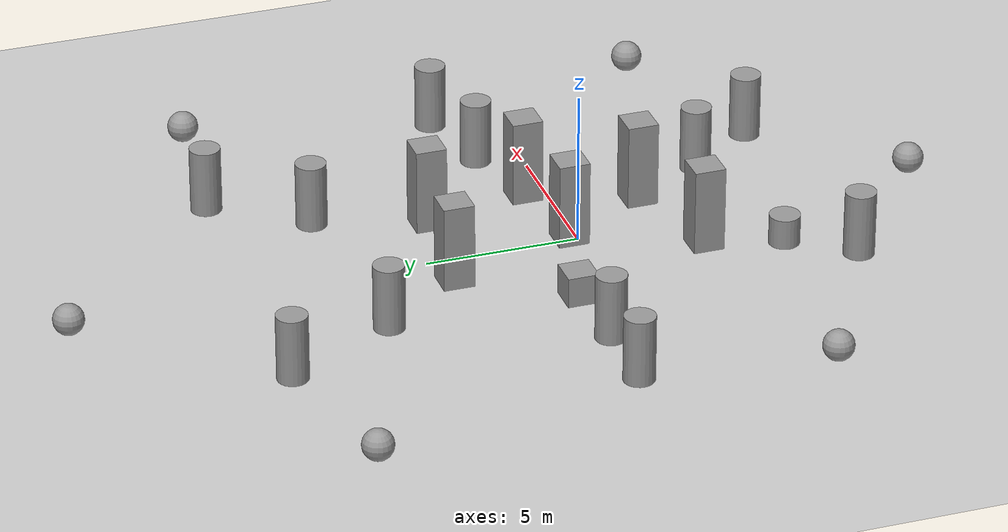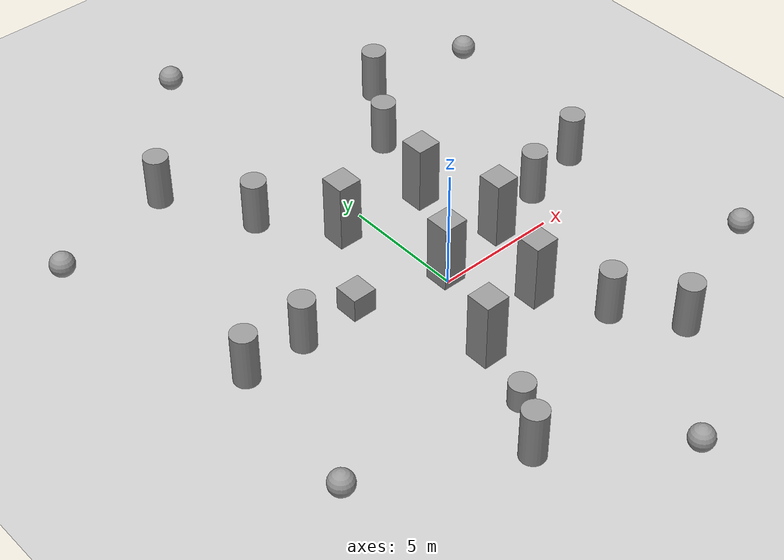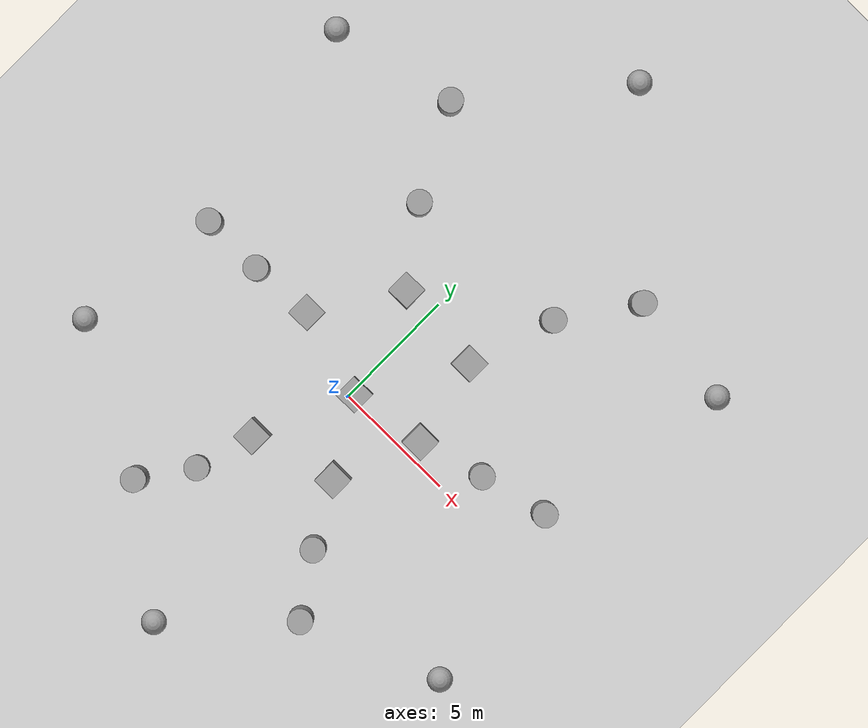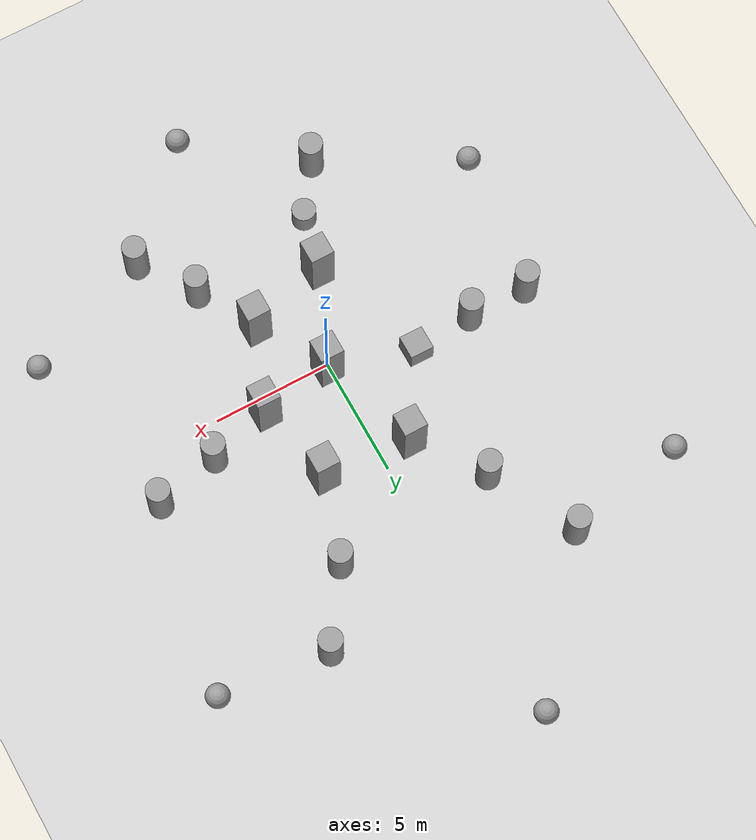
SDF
<sdf version="1.4">
  <world name="default">
    <include>
      <uri>model://ground_plane</uri>
    </include>
    <include>
      <uri>model://sun</uri>
    </include>

    <model name='unit_box'>
      <pose>-3.41504 1.18544 0.5 0 -0 0</pose>
      <link name='link'>
        <inertial>
          <mass>1</mass>
          <inertia>
            <ixx>0.166667</ixx>
            <ixy>0</ixy>
            <ixz>0</ixz>
            <iyy>0.166667</iyy>
            <iyz>0</iyz>
            <izz>0.166667</izz>
          </inertia>
          <pose>0 0 0 0 -0 0</pose>
        </inertial>
        <collision name='collision'>
          <geometry>
            <box>
              <size>1 1 1</size>
            </box>
          </geometry>
          <max_contacts>10</max_contacts>
          <surface>
            <contact>
              <ode/>
            </contact>
            <bounce/>
            <friction>
              <torsional>
                <ode/>
              </torsional>
              <ode/>
            </friction>
          </surface>
        </collision>
        <visual name='visual'>
          <geometry>
            <box>
              <size>1 1 1</size>
            </box>
          </geometry>
          <material>
            <script>
              <name>Gazebo/Grey</name>
              <uri>file://media/materials/scripts/gazebo.material</uri>
            </script>
          </material>
        </visual>
        <self_collide>0</self_collide>
        <enable_wind>0</enable_wind>
        <kinematic>0</kinematic>
      </link>
    </model>

    <model name='unit_box_clone_0'>
      <pose>-1.53892 -3.63462 1.4232 -2e-06 -0 -5.7e-05</pose>
      <link name='link'>
        <inertial>
          <mass>1</mass>
          <inertia>
            <ixx>0.166667</ixx>
            <ixy>0</ixy>
            <ixz>0</ixz>
            <iyy>0.166667</iyy>
            <iyz>0</iyz>
            <izz>0.166667</izz>
          </inertia>
          <pose>0 0 0 0 -0 0</pose>
        </inertial>
        <collision name='collision'>
          <geometry>
            <box>
              <size>1 1 2.8464</size>
            </box>
          </geometry>
          <max_contacts>10</max_contacts>
          <surface>
            <contact>
              <ode/>
            </contact>
            <bounce/>
            <friction>
              <torsional>
                <ode/>
              </torsional>
              <ode/>
            </friction>
          </surface>
        </collision>
        <visual name='visual'>
          <geometry>
            <box>
              <size>1 1 2.8464</size>
            </box>
          </geometry>
          <material>
            <script>
              <name>Gazebo/Grey</name>
              <uri>file://media/materials/scripts/gazebo.material</uri>
            </script>
          </material>
        </visual>
        <self_collide>0</self_collide>
        <enable_wind>0</enable_wind>
        <kinematic>0</kinematic>
      </link>
    </model>
    <model name='unit_box_clone_1'>
      <pose>-1.2548 4.48677 1.4232 -2e-06 -0 -5.7e-05</pose>
      <link name='link'>
        <inertial>
          <mass>1</mass>
          <inertia>
            <ixx>0.166667</ixx>
            <ixy>0</ixy>
            <ixz>0</ixz>
            <iyy>0.166667</iyy>
            <iyz>0</iyz>
            <izz>0.166667</izz>
          </inertia>
          <pose>0 0 0 0 -0 0</pose>
        </inertial>
        <collision name='collision'>
          <geometry>
            <box>
              <size>1 1 2.8464</size>
            </box>
          </geometry>
          <max_contacts>10</max_contacts>
          <surface>
            <contact>
              <ode/>
            </contact>
            <bounce/>
            <friction>
              <torsional>
                <ode/>
              </torsional>
              <ode/>
            </friction>
          </surface>
        </collision>
        <visual name='visual'>
          <geometry>
            <box>
              <size>1 1 2.8464</size>
            </box>
          </geometry>
          <material>
            <script>
              <name>Gazebo/Grey</name>
              <uri>file://media/materials/scripts/gazebo.material</uri>
            </script>
          </material>
        </visual>
        <self_collide>0</self_collide>
        <enable_wind>0</enable_wind>
        <kinematic>0</kinematic>
      </link>
    </model>
    <model name='unit_box_clone_2'>
      <pose>2.43031 4.19203 1.4232 -2e-06 -0 -5.7e-05</pose>
      <link name='link'>
        <inertial>
          <mass>1</mass>
          <inertia>
            <ixx>0.166667</ixx>
            <ixy>0</ixy>
            <ixz>0</ixz>
            <iyy>0.166667</iyy>
            <iyz>0</iyz>
            <izz>0.166667</izz>
          </inertia>
          <pose>0 0 0 0 -0 0</pose>
        </inertial>
        <collision name='collision'>
          <geometry>
            <box>
              <size>1 1 2.8464</size>
            </box>
          </geometry>
          <max_contacts>10</max_contacts>
          <surface>
            <contact>
              <ode/>
            </contact>
            <bounce/>
            <friction>
              <torsional>
                <ode/>
              </torsional>
              <ode/>
            </friction>
          </surface>
        </collision>
        <visual name='visual'>
          <geometry>
            <box>
              <size>1 1 2.8464</size>
            </box>
          </geometry>
          <material>
            <script>
              <name>Gazebo/Grey</name>
              <uri>file://media/materials/scripts/gazebo.material</uri>
            </script>
          </material>
        </visual>
        <self_collide>0</self_collide>
        <enable_wind>0</enable_wind>
        <kinematic>0</kinematic>
      </link>
    </model>
    <model name='unit_box_clone_3'>
      <pose>3.19683 0.742139 1.4232 -2e-06 -0 -5.7e-05</pose>
      <link name='link'>
        <inertial>
          <mass>1</mass>
          <inertia>
            <ixx>0.166667</ixx>
            <ixy>0</ixy>
            <ixz>0</ixz>
            <iyy>0.166667</iyy>
            <iyz>0</iyz>
            <izz>0.166667</izz>
          </inertia>
          <pose>0 0 0 0 -0 0</pose>
        </inertial>
        <collision name='collision'>
          <geometry>
            <box>
              <size>1 1 2.8464</size>
            </box>
          </geometry>
          <max_contacts>10</max_contacts>
          <surface>
            <contact>
              <ode/>
            </contact>
            <bounce/>
            <friction>
              <torsional>
                <ode/>
              </torsional>
              <ode/>
            </friction>
          </surface>
        </collision>
        <visual name='visual'>
          <geometry>
            <box>
              <size>1 1 2.8464</size>
            </box>
          </geometry>
          <material>
            <script>
              <name>Gazebo/Grey</name>
              <uri>file://media/materials/scripts/gazebo.material</uri>
            </script>
          </material>
        </visual>
        <self_collide>0</self_collide>
        <enable_wind>0</enable_wind>
        <kinematic>0</kinematic>
      </link>
    </model>
    <model name='unit_box_clone_4'>
      <pose>1.83866 -2.64656 1.4232 -2e-06 -0 -5.7e-05</pose>
      <link name='link'>
        <inertial>
          <mass>1</mass>
          <inertia>
            <ixx>0.166667</ixx>
            <ixy>0</ixy>
            <ixz>0</ixz>
            <iyy>0.166667</iyy>
            <iyz>0</iyz>
            <izz>0.166667</izz>
          </inertia>
          <pose>0 0 0 0 -0 0</pose>
        </inertial>
        <collision name='collision'>
          <geometry>
            <box>
              <size>1 1 2.8464</size>
            </box>
          </geometry>
          <max_contacts>10</max_contacts>
          <surface>
            <contact>
              <ode/>
            </contact>
            <bounce/>
            <friction>
              <torsional>
                <ode/>
              </torsional>
              <ode/>
            </friction>
          </surface>
        </collision>
        <visual name='visual'>
          <geometry>
            <box>
              <size>1 1 2.8464</size>
            </box>
          </geometry>
          <material>
            <script>
              <name>Gazebo/Grey</name>
              <uri>file://media/materials/scripts/gazebo.material</uri>
            </script>
          </material>
        </visual>
        <self_collide>0</self_collide>
        <enable_wind>0</enable_wind>
        <kinematic>0</kinematic>
      </link>
    </model>
    <model name='unit_cylinder'>
      <pose>-2.21579 -6.07573 0.5 0 -0 0</pose>
      <link name='link'>
        <inertial>
          <mass>1</mass>
          <inertia>
            <ixx>0.145833</ixx>
            <ixy>0</ixy>
            <ixz>0</ixz>
            <iyy>0.145833</iyy>
            <iyz>0</iyz>
            <izz>0.125</izz>
          </inertia>
          <pose>0 0 0 0 -0 0</pose>
        </inertial>
        <collision name='collision'>
          <geometry>
            <cylinder>
              <radius>0.5</radius>
              <length>1</length>
            </cylinder>
          </geometry>
          <max_contacts>10</max_contacts>
          <surface>
            <contact>
              <ode/>
            </contact>
            <bounce/>
            <friction>
              <torsional>
                <ode/>
              </torsional>
              <ode/>
            </friction>
          </surface>
        </collision>
        <visual name='visual'>
          <geometry>
            <cylinder>
              <radius>0.5</radius>
              <length>1</length>
            </cylinder>
          </geometry>
          <material>
            <script>
              <name>Gazebo/Grey</name>
              <uri>file://media/materials/scripts/gazebo.material</uri>
            </script>
          </material>
        </visual>
        <self_collide>0</self_collide>
        <enable_wind>0</enable_wind>
        <kinematic>0</kinematic>
      </link>
    </model>
    <model name='unit_cylinder_clone'>
      <pose>-5.98206 1.03924 1.10541 0 -0 2e-06</pose>
      <link name='link'>
        <inertial>
          <mass>1</mass>
          <inertia>
            <ixx>0.145833</ixx>
            <ixy>0</ixy>
            <ixz>0</ixz>
            <iyy>0.145833</iyy>
            <iyz>0</iyz>
            <izz>0.125</izz>
          </inertia>
          <pose>0 0 0 0 -0 0</pose>
        </inertial>
        <collision name='collision'>
          <geometry>
            <cylinder>
              <radius>0.5</radius>
              <length>2.21082</length>
            </cylinder>
          </geometry>
          <max_contacts>10</max_contacts>
          <surface>
            <contact>
              <ode/>
            </contact>
            <bounce/>
            <friction>
              <torsional>
                <ode/>
              </torsional>
              <ode/>
            </friction>
          </surface>
        </collision>
        <visual name='visual'>
          <geometry>
            <cylinder>
              <radius>0.5</radius>
              <length>2.21082</length>
            </cylinder>
          </geometry>
          <material>
            <script>
              <name>Gazebo/Grey</name>
              <uri>file://media/materials/scripts/gazebo.material</uri>
            </script>
          </material>
        </visual>
        <self_collide>0</self_collide>
        <enable_wind>0</enable_wind>
        <kinematic>0</kinematic>
      </link>
    </model>
    <model name='unit_cylinder_clone_0'>
      <pose>-3.28083 7.2398 1.10541 0 -0 2e-06</pose>
      <link name='link'>
        <inertial>
          <mass>1</mass>
          <inertia>
            <ixx>0.145833</ixx>
            <ixy>0</ixy>
            <ixz>0</ixz>
            <iyy>0.145833</iyy>
            <iyz>0</iyz>
            <izz>0.125</izz>
          </inertia>
          <pose>0 0 0 0 -0 0</pose>
        </inertial>
        <collision name='collision'>
          <geometry>
            <cylinder>
              <radius>0.5</radius>
              <length>2.21082</length>
            </cylinder>
          </geometry>
          <max_contacts>10</max_contacts>
          <surface>
            <contact>
              <ode/>
            </contact>
            <bounce/>
            <friction>
              <torsional>
                <ode/>
              </torsional>
              <ode/>
            </friction>
          </surface>
        </collision>
        <visual name='visual'>
          <geometry>
            <cylinder>
              <radius>0.5</radius>
              <length>2.21082</length>
            </cylinder>
          </geometry>
          <material>
            <script>
              <name>Gazebo/Grey</name>
              <uri>file://media/materials/scripts/gazebo.material</uri>
            </script>
          </material>
        </visual>
        <self_collide>0</self_collide>
        <enable_wind>0</enable_wind>
        <kinematic>0</kinematic>
      </link>
    </model>
    <model name='unit_cylinder_clone_1'>
      <pose>3.56111 7.65848 1.10541 0 -0 2e-06</pose>
      <link name='link'>
        <inertial>
          <mass>1</mass>
          <inertia>
            <ixx>0.145833</ixx>
            <ixy>0</ixy>
            <ixz>0</ixz>
            <iyy>0.145833</iyy>
            <iyz>0</iyz>
            <izz>0.125</izz>
          </inertia>
          <pose>0 0 0 0 -0 0</pose>
        </inertial>
        <collision name='collision'>
          <geometry>
            <cylinder>
              <radius>0.5</radius>
              <length>2.21082</length>
            </cylinder>
          </geometry>
          <max_contacts>10</max_contacts>
          <surface>
            <contact>
              <ode/>
            </contact>
            <bounce/>
            <friction>
              <torsional>
                <ode/>
              </torsional>
              <ode/>
            </friction>
          </surface>
        </collision>
        <visual name='visual'>
          <geometry>
            <cylinder>
              <radius>0.5</radius>
              <length>2.21082</length>
            </cylinder>
          </geometry>
          <material>
            <script>
              <name>Gazebo/Grey</name>
              <uri>file://media/materials/scripts/gazebo.material</uri>
            </script>
          </material>
        </visual>
        <self_collide>0</self_collide>
        <enable_wind>0</enable_wind>
        <kinematic>0</kinematic>
      </link>
    </model>
    <model name='unit_cylinder_clone_2'>
      <pose>3.17995 -5.10615 1.10541 0 -0 2e-06</pose>
      <link name='link'>
        <inertial>
          <mass>1</mass>
          <inertia>
            <ixx>0.145833</ixx>
            <ixy>0</ixy>
            <ixz>0</ixz>
            <iyy>0.145833</iyy>
            <iyz>0</iyz>
            <izz>0.125</izz>
          </inertia>
          <pose>0 0 0 0 -0 0</pose>
        </inertial>
        <collision name='collision'>
          <geometry>
            <cylinder>
              <radius>0.5</radius>
              <length>2.21082</length>
            </cylinder>
          </geometry>
          <max_contacts>10</max_contacts>
          <surface>
            <contact>
              <ode/>
            </contact>
            <bounce/>
            <friction>
              <torsional>
                <ode/>
              </torsional>
              <ode/>
            </friction>
          </surface>
        </collision>
        <visual name='visual'>
          <geometry>
            <cylinder>
              <radius>0.5</radius>
              <length>2.21082</length>
            </cylinder>
          </geometry>
          <material>
            <script>
              <name>Gazebo/Grey</name>
              <uri>file://media/materials/scripts/gazebo.material</uri>
            </script>
          </material>
        </visual>
        <self_collide>0</self_collide>
        <enable_wind>0</enable_wind>
        <kinematic>0</kinematic>
      </link>
    </model>
    <model name='unit_cylinder_clone_3'>
      <pose>5.8325 1.4565 1.10541 0 -0 2e-06</pose>
      <link name='link'>
        <inertial>
          <mass>1</mass>
          <inertia>
            <ixx>0.145833</ixx>
            <ixy>0</ixy>
            <ixz>0</ixz>
            <iyy>0.145833</iyy>
            <iyz>0</iyz>
            <izz>0.125</izz>
          </inertia>
          <pose>0 0 0 0 -0 0</pose>
        </inertial>
        <collision name='collision'>
          <geometry>
            <cylinder>
              <radius>0.5</radius>
              <length>2.21082</length>
            </cylinder>
          </geometry>
          <max_contacts>10</max_contacts>
          <surface>
            <contact>
              <ode/>
            </contact>
            <bounce/>
            <friction>
              <torsional>
                <ode/>
              </torsional>
              <ode/>
            </friction>
          </surface>
        </collision>
        <visual name='visual'>
          <geometry>
            <cylinder>
              <radius>0.5</radius>
              <length>2.21082</length>
            </cylinder>
          </geometry>
          <material>
            <script>
              <name>Gazebo/Grey</name>
              <uri>file://media/materials/scripts/gazebo.material</uri>
            </script>
          </material>
        </visual>
        <self_collide>0</self_collide>
        <enable_wind>0</enable_wind>
        <kinematic>0</kinematic>
      </link>
    </model>
    <model name='unit_cylinder_clone_4'>
      <pose>-3.61313 -8.02934 1.10541 0 -0 2e-06</pose>
      <link name='link'>
        <inertial>
          <mass>1</mass>
          <inertia>
            <ixx>0.145833</ixx>
            <ixy>0</ixy>
            <ixz>0</ixz>
            <iyy>0.145833</iyy>
            <iyz>0</iyz>
            <izz>0.125</izz>
          </inertia>
          <pose>0 0 0 0 -0 0</pose>
        </inertial>
        <collision name='collision'>
          <geometry>
            <cylinder>
              <radius>0.5</radius>
              <length>2.21082</length>
            </cylinder>
          </geometry>
          <max_contacts>10</max_contacts>
          <surface>
            <contact>
              <ode/>
            </contact>
            <bounce/>
            <friction>
              <torsional>
                <ode/>
              </torsional>
              <ode/>
            </friction>
          </surface>
        </collision>
        <visual name='visual'>
          <geometry>
            <cylinder>
              <radius>0.5</radius>
              <length>2.21082</length>
            </cylinder>
          </geometry>
          <material>
            <script>
              <name>Gazebo/Grey</name>
              <uri>file://media/materials/scripts/gazebo.material</uri>
            </script>
          </material>
        </visual>
        <self_collide>0</self_collide>
        <enable_wind>0</enable_wind>
        <kinematic>0</kinematic>
      </link>
    </model>
    <model name='unit_cylinder_clone_5'>
      <pose>-8.52772 1.04763 1.10541 0 -0 2e-06</pose>
      <link name='link'>
        <inertial>
          <mass>1</mass>
          <inertia>
            <ixx>0.145833</ixx>
            <ixy>0</ixy>
            <ixz>0</ixz>
            <iyy>0.145833</iyy>
            <iyz>0</iyz>
            <izz>0.125</izz>
          </inertia>
          <pose>0 0 0 0 -0 0</pose>
        </inertial>
        <collision name='collision'>
          <geometry>
            <cylinder>
              <radius>0.5</radius>
              <length>2.21082</length>
            </cylinder>
          </geometry>
          <max_contacts>10</max_contacts>
          <surface>
            <contact>
              <ode/>
            </contact>
            <bounce/>
            <friction>
              <torsional>
                <ode/>
              </torsional>
              <ode/>
            </friction>
          </surface>
        </collision>
        <visual name='visual'>
          <geometry>
            <cylinder>
              <radius>0.5</radius>
              <length>2.21082</length>
            </cylinder>
          </geometry>
          <material>
            <script>
              <name>Gazebo/Grey</name>
              <uri>file://media/materials/scripts/gazebo.material</uri>
            </script>
          </material>
        </visual>
        <self_collide>0</self_collide>
        <enable_wind>0</enable_wind>
        <kinematic>0</kinematic>
      </link>
    </model>
    <model name='unit_cylinder_clone_6'>
      <pose>-5.17824 10.8631 1.10541 0 -0 2e-06</pose>
      <link name='link'>
        <inertial>
          <mass>1</mass>
          <inertia>
            <ixx>0.145833</ixx>
            <ixy>0</ixy>
            <ixz>0</ixz>
            <iyy>0.145833</iyy>
            <iyz>0</iyz>
            <izz>0.125</izz>
          </inertia>
          <pose>0 0 0 0 -0 0</pose>
        </inertial>
        <collision name='collision'>
          <geometry>
            <cylinder>
              <radius>0.5</radius>
              <length>2.21082</length>
            </cylinder>
          </geometry>
          <max_contacts>10</max_contacts>
          <surface>
            <contact>
              <ode/>
            </contact>
            <bounce/>
            <friction>
              <torsional>
                <ode/>
              </torsional>
              <ode/>
            </friction>
          </surface>
        </collision>
        <visual name='visual'>
          <geometry>
            <cylinder>
              <radius>0.5</radius>
              <length>2.21082</length>
            </cylinder>
          </geometry>
          <material>
            <script>
              <name>Gazebo/Grey</name>
              <uri>file://media/materials/scripts/gazebo.material</uri>
            </script>
          </material>
        </visual>
        <self_collide>0</self_collide>
        <enable_wind>0</enable_wind>
        <kinematic>0</kinematic>
      </link>
    </model>
    <model name='unit_cylinder_clone_7'>
      <pose>5.55925 10.5475 1.10541 0 -0 2e-06</pose>
      <link name='link'>
        <inertial>
          <mass>1</mass>
          <inertia>
            <ixx>0.145833</ixx>
            <ixy>0</ixy>
            <ixz>0</ixz>
            <iyy>0.145833</iyy>
            <iyz>0</iyz>
            <izz>0.125</izz>
          </inertia>
          <pose>0 0 0 0 -0 0</pose>
        </inertial>
        <collision name='collision'>
          <geometry>
            <cylinder>
              <radius>0.5</radius>
              <length>2.21082</length>
            </cylinder>
          </geometry>
          <max_contacts>10</max_contacts>
          <surface>
            <contact>
              <ode/>
            </contact>
            <bounce/>
            <friction>
              <torsional>
                <ode/>
              </torsional>
              <ode/>
            </friction>
          </surface>
        </collision>
        <visual name='visual'>
          <geometry>
            <cylinder>
              <radius>0.5</radius>
              <length>2.21082</length>
            </cylinder>
          </geometry>
          <material>
            <script>
              <name>Gazebo/Grey</name>
              <uri>file://media/materials/scripts/gazebo.material</uri>
            </script>
          </material>
        </visual>
        <self_collide>0</self_collide>
        <enable_wind>0</enable_wind>
        <kinematic>0</kinematic>
      </link>
    </model>
    <model name='unit_cylinder_clone_8'>
      <pose>8.57322 2.11493 1.10541 0 -0 1e-06</pose>
      <link name='link'>
        <inertial>
          <mass>1</mass>
          <inertia>
            <ixx>0.145833</ixx>
            <ixy>0</ixy>
            <ixz>0</ixz>
            <iyy>0.145833</iyy>
            <iyz>0</iyz>
            <izz>0.125</izz>
          </inertia>
          <pose>0 0 0 0 -0 0</pose>
        </inertial>
        <collision name='collision'>
          <geometry>
            <cylinder>
              <radius>0.5</radius>
              <length>2.21082</length>
            </cylinder>
          </geometry>
          <max_contacts>10</max_contacts>
          <surface>
            <contact>
              <ode/>
            </contact>
            <bounce/>
            <friction>
              <torsional>
                <ode/>
              </torsional>
              <ode/>
            </friction>
          </surface>
        </collision>
        <visual name='visual'>
          <geometry>
            <cylinder>
              <radius>0.5</radius>
              <length>2.21082</length>
            </cylinder>
          </geometry>
          <material>
            <script>
              <name>Gazebo/Grey</name>
              <uri>file://media/materials/scripts/gazebo.material</uri>
            </script>
          </material>
        </visual>
        <self_collide>0</self_collide>
        <enable_wind>0</enable_wind>
        <kinematic>0</kinematic>
      </link>
    </model>
    <model name='unit_cylinder_clone_9'>
      <pose>4.7583 -7.40097 1.10541 0 -0 1e-06</pose>
      <link name='link'>
        <inertial>
          <mass>1</mass>
          <inertia>
            <ixx>0.145833</ixx>
            <ixy>0</ixy>
            <ixz>0</ixz>
            <iyy>0.145833</iyy>
            <iyz>0</iyz>
            <izz>0.125</izz>
          </inertia>
          <pose>0 0 0 0 -0 0</pose>
        </inertial>
        <collision name='collision'>
          <geometry>
            <cylinder>
              <radius>0.5</radius>
              <length>2.21082</length>
            </cylinder>
          </geometry>
          <max_contacts>10</max_contacts>
          <surface>
            <contact>
              <ode/>
            </contact>
            <bounce/>
            <friction>
              <torsional>
                <ode/>
              </torsional>
              <ode/>
            </friction>
          </surface>
        </collision>
        <visual name='visual'>
          <geometry>
            <cylinder>
              <radius>0.5</radius>
              <length>2.21082</length>
            </cylinder>
          </geometry>
          <material>
            <script>
              <name>Gazebo/Grey</name>
              <uri>file://media/materials/scripts/gazebo.material</uri>
            </script>
          </material>
        </visual>
        <self_collide>0</self_collide>
        <enable_wind>0</enable_wind>
        <kinematic>0</kinematic>
      </link>
    </model>
    <model name='unit_sphere_0'>
      <pose>10.2351 -5.29035 0.5 0 -0 0</pose>
      <link name='link'>
        <inertial>
          <mass>1</mass>
          <inertia>
            <ixx>0.1</ixx>
            <ixy>0</ixy>
            <ixz>0</ixz>
            <iyy>0.1</iyy>
            <iyz>0</iyz>
            <izz>0.1</izz>
          </inertia>
          <pose>0 0 0 0 -0 0</pose>
        </inertial>
        <collision name='collision'>
          <geometry>
            <sphere>
              <radius>0.5</radius>
            </sphere>
          </geometry>
          <max_contacts>10</max_contacts>
          <surface>
            <contact>
              <ode/>
            </contact>
            <bounce/>
            <friction>
              <torsional>
                <ode/>
              </torsional>
              <ode/>
            </friction>
          </surface>
        </collision>
        <visual name='visual'>
          <geometry>
            <sphere>
              <radius>0.5</radius>
            </sphere>
          </geometry>
          <material>
            <script>
              <name>Gazebo/Grey</name>
              <uri>file://media/materials/scripts/gazebo.material</uri>
            </script>
          </material>
        </visual>
        <self_collide>0</self_collide>
        <enable_wind>0</enable_wind>
        <kinematic>0</kinematic>
      </link>
    </model>
    <model name='unit_sphere_0_clone'>
      <pose>0.793495 -11.5031 0.5 0 -0 0</pose>
      <link name='link'>
        <inertial>
          <mass>1</mass>
          <inertia>
            <ixx>0.1</ixx>
            <ixy>0</ixy>
            <ixz>0</ixz>
            <iyy>0.1</iyy>
            <iyz>0</iyz>
            <izz>0.1</izz>
          </inertia>
          <pose>0 0 0 0 -0 0</pose>
        </inertial>
        <collision name='collision'>
          <geometry>
            <sphere>
              <radius>0.5</radius>
            </sphere>
          </geometry>
          <max_contacts>10</max_contacts>
          <surface>
            <contact>
              <ode/>
            </contact>
            <bounce/>
            <friction>
              <torsional>
                <ode/>
              </torsional>
              <ode/>
            </friction>
          </surface>
        </collision>
        <visual name='visual'>
          <geometry>
            <sphere>
              <radius>0.5</radius>
            </sphere>
          </geometry>
          <material>
            <script>
              <name>Gazebo/Grey</name>
              <uri>file://media/materials/scripts/gazebo.material</uri>
            </script>
          </material>
        </visual>
        <self_collide>0</self_collide>
        <enable_wind>0</enable_wind>
        <kinematic>0</kinematic>
      </link>
    </model>
    <model name='unit_sphere_0_clone_0'>
      <pose>-9.35798 -5.04074 0.5 0 -0 0</pose>
      <link name='link'>
        <inertial>
          <mass>1</mass>
          <inertia>
            <ixx>0.1</ixx>
            <ixy>0</ixy>
            <ixz>0</ixz>
            <iyy>0.1</iyy>
            <iyz>0</iyz>
            <izz>0.1</izz>
          </inertia>
          <pose>0 0 0 0 -0 0</pose>
        </inertial>
        <collision name='collision'>
          <geometry>
            <sphere>
              <radius>0.5</radius>
            </sphere>
          </geometry>
          <max_contacts>10</max_contacts>
          <surface>
            <contact>
              <ode/>
            </contact>
            <bounce/>
            <friction>
              <torsional>
                <ode/>
              </torsional>
              <ode/>
            </friction>
          </surface>
        </collision>
        <visual name='visual'>
          <geometry>
            <sphere>
              <radius>0.5</radius>
            </sphere>
          </geometry>
          <material>
            <script>
              <name>Gazebo/Grey</name>
              <uri>file://media/materials/scripts/gazebo.material</uri>
            </script>
          </material>
        </visual>
        <self_collide>0</self_collide>
        <enable_wind>0</enable_wind>
        <kinematic>0</kinematic>
      </link>
    </model>
    <model name='unit_sphere_0_clone_1'>
      <pose>-10.3106 9.78944 0.5 0 -0 0</pose>
      <link name='link'>
        <inertial>
          <mass>1</mass>
          <inertia>
            <ixx>0.1</ixx>
            <ixy>0</ixy>
            <ixz>0</ixz>
            <iyy>0.1</iyy>
            <iyz>0</iyz>
            <izz>0.1</izz>
          </inertia>
          <pose>0 0 0 0 -0 0</pose>
        </inertial>
        <collision name='collision'>
          <geometry>
            <sphere>
              <radius>0.5</radius>
            </sphere>
          </geometry>
          <max_contacts>10</max_contacts>
          <surface>
            <contact>
              <ode/>
            </contact>
            <bounce/>
            <friction>
              <torsional>
                <ode/>
              </torsional>
              <ode/>
            </friction>
          </surface>
        </collision>
        <visual name='visual'>
          <geometry>
            <sphere>
              <radius>0.5</radius>
            </sphere>
          </geometry>
          <material>
            <script>
              <name>Gazebo/Grey</name>
              <uri>file://media/materials/scripts/gazebo.material</uri>
            </script>
          </material>
        </visual>
        <self_collide>0</self_collide>
        <enable_wind>0</enable_wind>
        <kinematic>0</kinematic>
      </link>
    </model>
    <model name='unit_sphere_0_clone_2'>
      <pose>-0.51406 16.5791 0.5 0 -0 0</pose>
      <link name='link'>
        <inertial>
          <mass>1</mass>
          <inertia>
            <ixx>0.1</ixx>
            <ixy>0</ixy>
            <ixz>0</ixz>
            <iyy>0.1</iyy>
            <iyz>0</iyz>
            <izz>0.1</izz>
          </inertia>
          <pose>0 0 0 0 -0 0</pose>
        </inertial>
        <collision name='collision'>
          <geometry>
            <sphere>
              <radius>0.5</radius>
            </sphere>
          </geometry>
          <max_contacts>10</max_contacts>
          <surface>
            <contact>
              <ode/>
            </contact>
            <bounce/>
            <friction>
              <torsional>
                <ode/>
              </torsional>
              <ode/>
            </friction>
          </surface>
        </collision>
        <visual name='visual'>
          <geometry>
            <sphere>
              <radius>0.5</radius>
            </sphere>
          </geometry>
          <material>
            <script>
              <name>Gazebo/Grey</name>
              <uri>file://media/materials/scripts/gazebo.material</uri>
            </script>
          </material>
        </visual>
        <self_collide>0</self_collide>
        <enable_wind>0</enable_wind>
        <kinematic>0</kinematic>
      </link>
    </model>
    <model name='unit_sphere_0_clone_3'>
      <pose>10.1949 10.0306 0.5 0 -0 0</pose>
      <link name='link'>
        <inertial>
          <mass>1</mass>
          <inertia>
            <ixx>0.1</ixx>
            <ixy>0</ixy>
            <ixz>0</ixz>
            <iyy>0.1</iyy>
            <iyz>0</iyz>
            <izz>0.1</izz>
          </inertia>
          <pose>0 0 0 0 -0 0</pose>
        </inertial>
        <collision name='collision'>
          <geometry>
            <sphere>
              <radius>0.5</radius>
            </sphere>
          </geometry>
          <max_contacts>10</max_contacts>
          <surface>
            <contact>
              <ode/>
            </contact>
            <bounce/>
            <friction>
              <torsional>
                <ode/>
              </torsional>
              <ode/>
            </friction>
          </surface>
        </collision>
        <visual name='visual'>
          <geometry>
            <sphere>
              <radius>0.5</radius>
            </sphere>
          </geometry>
          <material>
            <script>
              <name>Gazebo/Grey</name>
              <uri>file://media/materials/scripts/gazebo.material</uri>
            </script>
          </material>
        </visual>
        <self_collide>0</self_collide>
        <enable_wind>0</enable_wind>
        <kinematic>0</kinematic>
      </link>
    </model>
    <model name='unit_box_clone'>
      <pose>0.127561 0.244891 1.4232 1e-06 1e-06 -0.000111</pose>
      <link name='link'>
        <inertial>
          <mass>1</mass>
          <inertia>
            <ixx>0.166667</ixx>
            <ixy>0</ixy>
            <ixz>0</ixz>
            <iyy>0.166667</iyy>
            <iyz>0</iyz>
            <izz>0.166667</izz>
          </inertia>
          <pose>0 0 0 0 -0 0</pose>
        </inertial>
        <collision name='collision'>
          <geometry>
            <box>
              <size>1 1 2.8464</size>
            </box>
          </geometry>
          <max_contacts>10</max_contacts>
          <surface>
            <contact>
              <ode/>
            </contact>
            <bounce/>
            <friction>
              <torsional>
                <ode/>
              </torsional>
              <ode/>
            </friction>
          </surface>
        </collision>
        <visual name='visual'>
          <geometry>
            <box>
              <size>1 1 2.8464</size>
            </box>
          </geometry>
          <material>
            <script>
              <name>Gazebo/Grey</name>
              <uri>file://media/materials/scripts/gazebo.material</uri>
            </script>
          </material>
        </visual>
        <self_collide>0</self_collide>
        <enable_wind>0</enable_wind>
        <kinematic>0</kinematic>
      </link>
    </model>

  </world>
</sdf>
